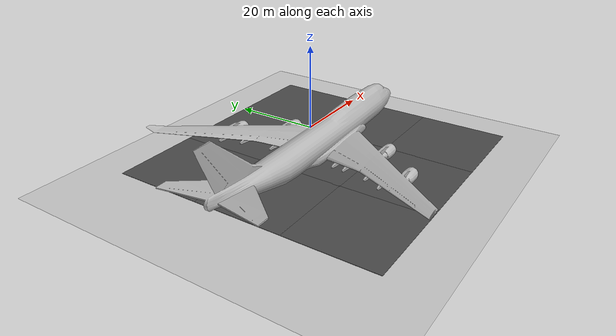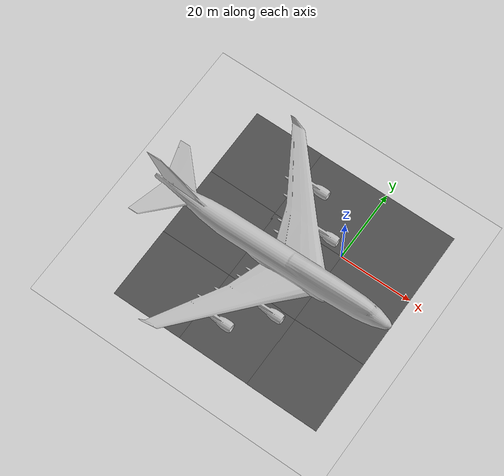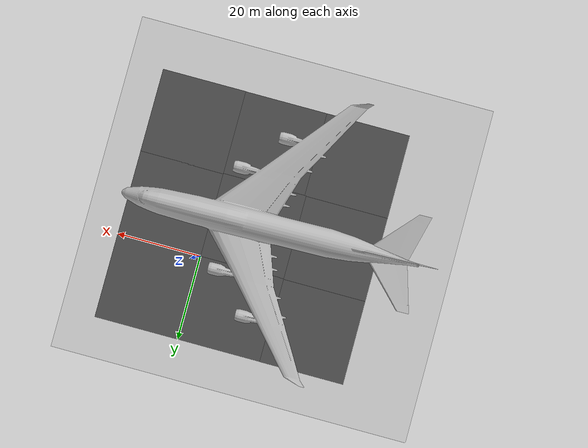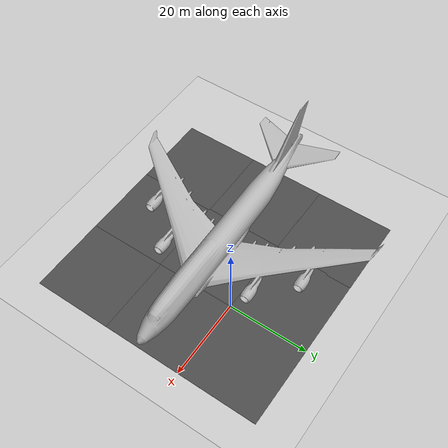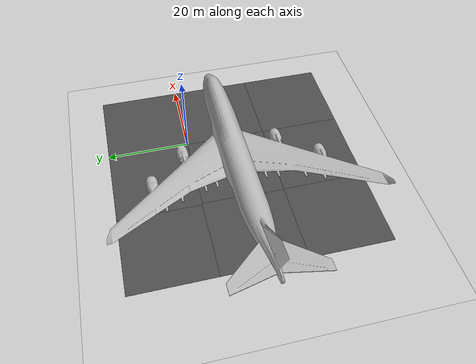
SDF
<sdf version="1.7">
 <world name="default">
  <light name="sun" type="directional">
   <pose>0 0 10 0 -0 0</pose>
   <diffuse>0.8 0.8 0.8 1</diffuse>
   <specular>0.2 0.2 0.2 1</specular>
   <attenuation>
    <range>1000</range>
    <constant>0.9</constant>
    <linear>0.01</linear>
    <quadratic>0.001</quadratic>
   </attenuation>
   <direction>-0.5 0.1 -0.9</direction>
   <spot><inner_angle>0</inner_angle><outer_angle>0</outer_angle><falloff>0</falloff></spot>
  </light>
  <plugin name="ros_interface_plugin" filename="librotors_gazebo_ros_interface_plugin.so"/>
  <physics type="ode">
   <ode>
    <solver>
     <type>quick</type>
     <iters>1000</iters>
     <sor>1.3</sor>
     <use_dynamic_moi_rescaling>0</use_dynamic_moi_rescaling>
    </solver>
    <constraints>
     <cfm>0</cfm>
     <erp>0.2</erp>
     <contact_max_correcting_vel>100</contact_max_correcting_vel>
     <contact_surface_layer>0.001</contact_surface_layer>
    </constraints>
   </ode>
   <max_step_size>0.01</max_step_size>
   <real_time_factor>1</real_time_factor>
   <real_time_update_rate>100</real_time_update_rate>
  </physics>
  <plugin name="gazebo_octomap" filename="librotors_gazebo_octomap_plugin.so">
   <octomapPubTopic>world/octomap</octomapPubTopic>
   <octomapServiceName>world/get_octomap</octomapServiceName>
  </plugin>
  <scene><ambient>0.4 0.4 0.4 1</ambient><background>0.7 0.7 0.7 1</background><shadows>1</shadows></scene>
  <spherical_coordinates>
   <surface_model>EARTH_WGS84</surface_model>
   <latitude_deg>47.3667</latitude_deg>
   <longitude_deg>8.55</longitude_deg>
   <elevation>500</elevation>
   <heading_deg>0</heading_deg>
  </spherical_coordinates>
  <model name="ground_plane">
   <static>1</static>
   <link name="link">
    <collision name="collision">
     <geometry><plane><normal>0 0 1</normal><size>100 100</size></plane></geometry>
     <surface><friction><ode><mu>100</mu><mu2>50</mu2></ode></friction></surface>
    </collision>
    <visual name="visual">
     <cast_shadows>0</cast_shadows>
     <geometry><plane><normal>0 0 1</normal><size>100 100</size></plane></geometry>
     <material>
      <script><uri>file://media/materials/scripts/gazebo.material</uri><name>Gazebo/Grey</name></script>
     </material>
    </visual>
    <velocity_decay><linear>0</linear><angular>0</angular></velocity_decay>
   </link>
   <pose>17 -17 0 0 -0 0</pose>
  </model>
  <gravity>0 0 -9.8</gravity>
  <magnetic_field>6e-06 2.3e-05 -4.2e-05</magnetic_field>
  <atmosphere type="adiabatic"/>
  <model name="asphalt_plane">
   <static>1</static>
   <link name="link">
    <collision name="collision"><geometry><box><size>20 20 0.1</size></box></geometry></collision>
    <visual name="visual">
     <cast_shadows>0</cast_shadows>
     <geometry><box><size>20 20 0.1</size></box></geometry>
     <material>
      <script>
       <uri>model://asphalt_plane/materials/scripts</uri>
       <uri>model://asphalt_plane/materials/textures</uri>
       <name>vrc/asphalt</name>
      </script>
     </material>
    </visual>
   </link>
   <pose>9.97578 -10.0109 0 0 -0 0</pose>
  </model>
  <model name="asphalt_plane_0">
   <static>1</static>
   <link name="link">
    <collision name="collision"><geometry><box><size>20 20 0.1</size></box></geometry></collision>
    <visual name="visual">
     <cast_shadows>0</cast_shadows>
     <geometry><box><size>20 20 0.1</size></box></geometry>
     <material>
      <script>
       <uri>model://asphalt_plane/materials/scripts</uri>
       <uri>model://asphalt_plane/materials/textures</uri>
       <name>vrc/asphalt</name>
      </script>
     </material>
    </visual>
   </link>
   <pose>-9.9804 -10.0186 0 0 -0 0</pose>
  </model>
  <model name="asphalt_plane_1">
   <static>1</static>
   <link name="link">
    <collision name="collision"><geometry><box><size>20 20 0.1</size></box></geometry></collision>
    <visual name="visual">
     <cast_shadows>0</cast_shadows>
     <geometry><box><size>20 20 0.1</size></box></geometry>
     <material>
      <script>
       <uri>model://asphalt_plane/materials/scripts</uri>
       <uri>model://asphalt_plane/materials/textures</uri>
       <name>vrc/asphalt</name>
      </script>
     </material>
    </visual>
   </link>
   <pose>9.98779 9.94893 0 0 -0 0</pose>
  </model>
  <model name="asphalt_plane_2">
   <static>1</static>
   <link name="link">
    <collision name="collision"><geometry><box><size>20 20 0.1</size></box></geometry></collision>
    <visual name="visual">
     <cast_shadows>0</cast_shadows>
     <geometry><box><size>20 20 0.1</size></box></geometry>
     <material>
      <script>
       <uri>model://asphalt_plane/materials/scripts</uri>
       <uri>model://asphalt_plane/materials/textures</uri>
       <name>vrc/asphalt</name>
      </script>
     </material>
    </visual>
   </link>
   <pose>-9.98048 9.93157 0 0 -0 0</pose>
  </model>
  <model name="asphalt_plane_3">
   <static>1</static>
   <link name="link">
    <collision name="collision"><geometry><box><size>20 20 0.1</size></box></geometry></collision>
    <visual name="visual">
     <cast_shadows>0</cast_shadows>
     <geometry><box><size>20 20 0.1</size></box></geometry>
     <material>
      <script>
       <uri>model://asphalt_plane/materials/scripts</uri>
       <uri>model://asphalt_plane/materials/textures</uri>
       <name>vrc/asphalt</name>
      </script>
     </material>
    </visual>
   </link>
   <pose>9.99185 -29.8626 0 0 -0 0</pose>
  </model>
  <model name="asphalt_plane_4">
   <static>1</static>
   <link name="link">
    <collision name="collision"><geometry><box><size>20 20 0.1</size></box></geometry></collision>
    <visual name="visual">
     <cast_shadows>0</cast_shadows>
     <geometry><box><size>20 20 0.1</size></box></geometry>
     <material>
      <script>
       <uri>model://asphalt_plane/materials/scripts</uri>
       <uri>model://asphalt_plane/materials/textures</uri>
       <name>vrc/asphalt</name>
      </script>
     </material>
    </visual>
   </link>
   <pose>-9.91023 -29.822 0 0 -0 0</pose>
  </model>
  <model name="asphalt_plane_5">
   <static>1</static>
   <link name="link">
    <collision name="collision"><geometry><box><size>20 20 0.1</size></box></geometry></collision>
    <visual name="visual">
     <cast_shadows>0</cast_shadows>
     <geometry><box><size>20 20 0.1</size></box></geometry>
     <material>
      <script>
       <uri>model://asphalt_plane/materials/scripts</uri>
       <uri>model://asphalt_plane/materials/textures</uri>
       <name>vrc/asphalt</name>
      </script>
     </material>
    </visual>
   </link>
   <pose>-29.6274 -29.8288 0 0 -0 0</pose>
  </model>
  <model name="asphalt_plane_6">
   <static>1</static>
   <link name="link">
    <collision name="collision"><geometry><box><size>20 20 0.1</size></box></geometry></collision>
    <visual name="visual">
     <cast_shadows>0</cast_shadows>
     <geometry><box><size>20 20 0.1</size></box></geometry>
     <material>
      <script>
       <uri>model://asphalt_plane/materials/scripts</uri>
       <uri>model://asphalt_plane/materials/textures</uri>
       <name>vrc/asphalt</name>
      </script>
     </material>
    </visual>
   </link>
   <pose>-29.6128 -9.90672 0 0 -0 0</pose>
  </model>
  <model name="asphalt_plane_7">
   <static>1</static>
   <link name="link">
    <collision name="collision"><geometry><box><size>20 20 0.1</size></box></geometry></collision>
    <visual name="visual">
     <cast_shadows>0</cast_shadows>
     <geometry><box><size>20 20 0.1</size></box></geometry>
     <material>
      <script>
       <uri>model://asphalt_plane/materials/scripts</uri>
       <uri>model://asphalt_plane/materials/textures</uri>
       <name>vrc/asphalt</name>
      </script>
     </material>
    </visual>
   </link>
   <pose>-29.6128 9.96416 0 0 -0 0</pose>
  </model>
  <model name="Boeing747">
   <link name="link_0">
    <inertial>
     <mass>1</mass>
     <inertia><ixx>0.1</ixx><ixy>0</ixy><ixz>0</ixz><iyy>0.1</iyy><iyz>0</iyz><izz>0.1</izz></inertia>
    </inertial>
    <visual name="visual">
     <geometry><mesh><uri>model://Boeing747/meshes/Boeing-747.dae</uri><scale>1 1 1</scale></mesh></geometry>
     <material>
      <lighting>1</lighting>
      <script>
       <uri>model://Boeing747/materials/scripts</uri>
       <uri>model://Boeing747/materials/textures</uri>
       <name>boeing747/Diffuse</name>
      </script>
      <shader type="vertex"/>
     </material>
    </visual>
    <collision name="collision">
     <geometry><mesh><uri>model://Boeing747/meshes/Boeing-747.dae</uri><scale>1 1 1</scale></mesh></geometry>
    </collision>
   </link>
   <static>1</static>
   <pose>-13.6219 -10.358 0 0 -0 1.591</pose>
  </model>
 </world>
</sdf>
